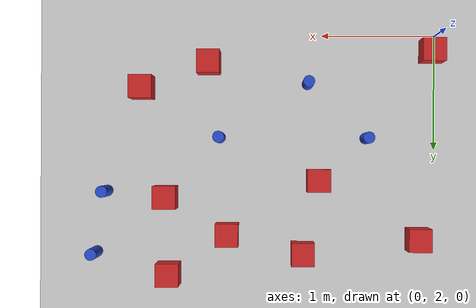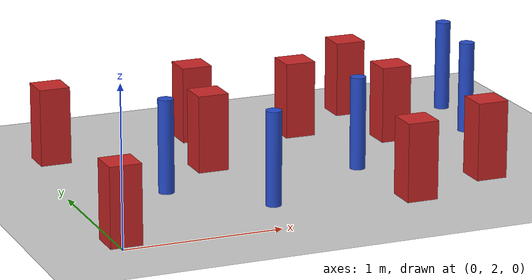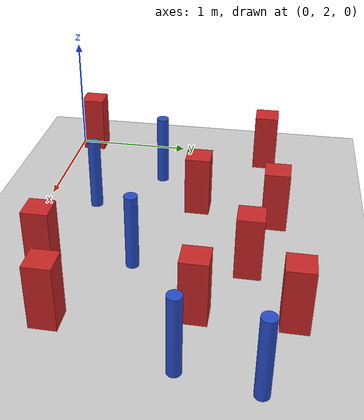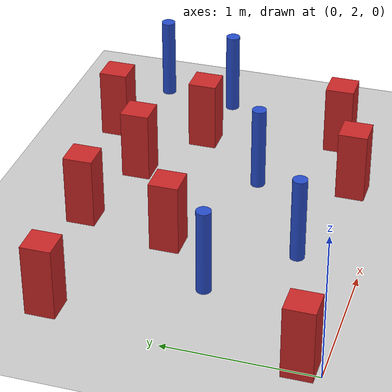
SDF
<sdf version="1.6">
 <world name="default">
  <model name="ground_plane">
   <static>1</static>
   <link name="link">
    <collision name="collision">
     <geometry><plane><normal>0 0 1</normal><size>100 100</size></plane></geometry>
     <surface><friction><ode><mu>100</mu><mu2>50</mu2></ode></friction></surface>
    </collision>
    <visual name="visual">
     <cast_shadows>0</cast_shadows>
     <geometry><plane><normal>0 0 1</normal><size>100 100</size></plane></geometry>
     <material>
      <ambient>1.0 1.0 1.0 1.0</ambient>
      <diffuse>0.8 0.8 0.8 1.0</diffuse>
      <specular>0.01 0.01 0.01 1.000000</specular>
     </material>
    </visual>
   </link>
  </model>
  <model name="pole_obstacle3">
   <static>true</static>
   <pose>1.12006407967 2.42599292531 2.88873142074e-08 -9.90536689791e-09 4.6021994899e-07 -1.20965994959e-07</pose>
   <link name="link">
    <pose>0 0 0.3 0 -0 0</pose>
    <inertial>
     <mass>1</mass>
     <inertia><ixx>0.145833</ixx><ixy>0</ixy><ixz>0</ixz><iyy>0.145833</iyy><iyz>0</iyz><izz>0.125</izz></inertia>
    </inertial>
    <collision name="collision">
     <geometry><cylinder><radius>0.05</radius><length>.6</length></cylinder></geometry>
    </collision>
    <visual name="visual">
     <geometry><cylinder><radius>0.05</radius><length>.6</length></cylinder></geometry>
     <material>
      <script><name>Gazebo/Blue</name><uri>file://media/materials/scripts/gazebo.material</uri></script>
     </material>
    </visual>
   </link>
  </model>
  <model name="square_post_obstacle60">
   <static>true</static>
   <pose>1.82237085994 3.7509318334 8.22691968438e-08 7.2212513382e-06 -7.54495500217e-07 2.29674213826e-05</pose>
   <link name="link">
    <pose>0 0 0.25 0 -0 0</pose>
    <inertial>
     <mass>100</mass>
     <inertia>
      <ixx>0.166667</ixx>
      <ixy>0</ixy>
      <ixz>0</ixz>
      <iyy>0.166667</iyy>
      <iyz>0</iyz>
      <izz>0.166667</izz>
     </inertia>
    </inertial>
    <collision name="collision"><geometry><box><size>.2 .2 .5</size></box></geometry></collision>
    <visual name="visual">
     <geometry><box><size>.2 .2 .5</size></box></geometry>
     <material>
      <script><name>Gazebo/Red</name><uri>file://media/materials/scripts/gazebo.material</uri></script>
     </material>
    </visual>
   </link>
  </model>
  <model name="pole_obstacle63">
   <static>true</static>
   <pose>1.89204631772 2.90207354669 2.88873142074e-08 -9.90536689791e-09 4.6021994899e-07 -1.20965994959e-07</pose>
   <link name="link">
    <pose>0 0 0.3 0 -0 0</pose>
    <inertial>
     <mass>1</mass>
     <inertia><ixx>0.145833</ixx><ixy>0</ixy><ixz>0</ixz><iyy>0.145833</iyy><iyz>0</iyz><izz>0.125</izz></inertia>
    </inertial>
    <collision name="collision">
     <geometry><cylinder><radius>0.05</radius><length>.6</length></cylinder></geometry>
    </collision>
    <visual name="visual">
     <geometry><cylinder><radius>0.05</radius><length>.6</length></cylinder></geometry>
     <material>
      <script><name>Gazebo/Blue</name><uri>file://media/materials/scripts/gazebo.material</uri></script>
     </material>
    </visual>
   </link>
  </model>
  <model name="square_post_obstacle66">
   <static>true</static>
   <pose>1.16284551338 3.91418669821 8.22691968438e-08 7.2212513382e-06 -7.54495500217e-07 2.29674213826e-05</pose>
   <link name="link">
    <pose>0 0 0.25 0 -0 0</pose>
    <inertial>
     <mass>100</mass>
     <inertia>
      <ixx>0.166667</ixx>
      <ixy>0</ixy>
      <ixz>0</ixz>
      <iyy>0.166667</iyy>
      <iyz>0</iyz>
      <izz>0.166667</izz>
     </inertia>
    </inertial>
    <collision name="collision"><geometry><box><size>.2 .2 .5</size></box></geometry></collision>
    <visual name="visual">
     <geometry><box><size>.2 .2 .5</size></box></geometry>
     <material>
      <script><name>Gazebo/Red</name><uri>file://media/materials/scripts/gazebo.material</uri></script>
     </material>
    </visual>
   </link>
  </model>
  <model name="square_post_obstacle74">
   <static>true</static>
   <pose>2.57115059037 2.46789326973 8.22691968438e-08 7.2212513382e-06 -7.54495500217e-07 2.29674213826e-05</pose>
   <link name="link">
    <pose>0 0 0.25 0 -0 0</pose>
    <inertial>
     <mass>100</mass>
     <inertia>
      <ixx>0.166667</ixx>
      <ixy>0</ixy>
      <ixz>0</ixz>
      <iyy>0.166667</iyy>
      <iyz>0</iyz>
      <izz>0.166667</izz>
     </inertia>
    </inertial>
    <collision name="collision"><geometry><box><size>.2 .2 .5</size></box></geometry></collision>
    <visual name="visual">
     <geometry><box><size>.2 .2 .5</size></box></geometry>
     <material>
      <script><name>Gazebo/Red</name><uri>file://media/materials/scripts/gazebo.material</uri></script>
     </material>
    </visual>
   </link>
  </model>
  <model name="pole_obstacle106">
   <static>true</static>
   <pose>2.97546142834 3.91210693573 2.88873142074e-08 -9.90536690232e-09 4.6021994898e-07 -1.20965994968e-07</pose>
   <link name="link">
    <pose>0 0 0.3 0 -0 0</pose>
    <inertial>
     <mass>1</mass>
     <inertia><ixx>0.145833</ixx><ixy>0</ixy><ixz>0</ixz><iyy>0.145833</iyy><iyz>0</iyz><izz>0.125</izz></inertia>
    </inertial>
    <collision name="collision">
     <geometry><cylinder><radius>0.05</radius><length>.6</length></cylinder></geometry>
    </collision>
    <visual name="visual">
     <geometry><cylinder><radius>0.05</radius><length>.6</length></cylinder></geometry>
     <material>
      <script><name>Gazebo/Blue</name><uri>file://media/materials/scripts/gazebo.material</uri></script>
     </material>
    </visual>
   </link>
  </model>
  <model name="pole_obstacle110">
   <static>true</static>
   <pose>2.88596875471 3.37521365826 2.88873142074e-08 -9.90536690232e-09 4.6021994898e-07 -1.20965994968e-07</pose>
   <link name="link">
    <pose>0 0 0.3 0 -0 0</pose>
    <inertial>
     <mass>1</mass>
     <inertia><ixx>0.145833</ixx><ixy>0</ixy><ixz>0</ixz><iyy>0.145833</iyy><iyz>0</iyz><izz>0.125</izz></inertia>
    </inertial>
    <collision name="collision">
     <geometry><cylinder><radius>0.05</radius><length>.6</length></cylinder></geometry>
    </collision>
    <visual name="visual">
     <geometry><cylinder><radius>0.05</radius><length>.6</length></cylinder></geometry>
     <material>
      <script><name>Gazebo/Blue</name><uri>file://media/materials/scripts/gazebo.material</uri></script>
     </material>
    </visual>
   </link>
  </model>
  <model name="square_post_obstacle116">
   <static>true</static>
   <pose>1.02640708633 3.27632808334 8.22691968438e-08 7.2212513382e-06 -7.54495500217e-07 2.29674213826e-05</pose>
   <link name="link">
    <pose>0 0 0.25 0 -0 0</pose>
    <inertial>
     <mass>100</mass>
     <inertia>
      <ixx>0.166667</ixx>
      <ixy>0</ixy>
      <ixz>0</ixz>
      <iyy>0.166667</iyy>
      <iyz>0</iyz>
      <izz>0.166667</izz>
     </inertia>
    </inertial>
    <collision name="collision"><geometry><box><size>.2 .2 .5</size></box></geometry></collision>
    <visual name="visual">
     <geometry><box><size>.2 .2 .5</size></box></geometry>
     <material>
      <script><name>Gazebo/Red</name><uri>file://media/materials/scripts/gazebo.material</uri></script>
     </material>
    </visual>
   </link>
  </model>
  <model name="square_post_obstacle131">
   <static>true</static>
   <pose>1.9884855205 2.24777952639 8.22691968438e-08 7.2212513382e-06 -7.54495500217e-07 2.29674213826e-05</pose>
   <link name="link">
    <pose>0 0 0.25 0 -0 0</pose>
    <inertial>
     <mass>100</mass>
     <inertia>
      <ixx>0.166667</ixx>
      <ixy>0</ixy>
      <ixz>0</ixz>
      <iyy>0.166667</iyy>
      <iyz>0</iyz>
      <izz>0.166667</izz>
     </inertia>
    </inertial>
    <collision name="collision"><geometry><box><size>.2 .2 .5</size></box></geometry></collision>
    <visual name="visual">
     <geometry><box><size>.2 .2 .5</size></box></geometry>
     <material>
      <script><name>Gazebo/Red</name><uri>file://media/materials/scripts/gazebo.material</uri></script>
     </material>
    </visual>
   </link>
  </model>
  <model name="square_post_obstacle155">
   <static>true</static>
   <pose>2.33254482875 4.09415571903 8.22691968438e-08 7.22125133819e-06 -7.54495500217e-07 2.29674213826e-05</pose>
   <link name="link">
    <pose>0 0 0.25 0 -0 0</pose>
    <inertial>
     <mass>100</mass>
     <inertia>
      <ixx>0.166667</ixx>
      <ixy>0</ixy>
      <ixz>0</ixz>
      <iyy>0.166667</iyy>
      <iyz>0</iyz>
      <izz>0.166667</izz>
     </inertia>
    </inertial>
    <collision name="collision"><geometry><box><size>.2 .2 .5</size></box></geometry></collision>
    <visual name="visual">
     <geometry><box><size>.2 .2 .5</size></box></geometry>
     <material>
      <script><name>Gazebo/Red</name><uri>file://media/materials/scripts/gazebo.material</uri></script>
     </material>
    </visual>
   </link>
  </model>
  <model name="square_post_obstacle161">
   <static>true</static>
   <pose>0.0383099126469 2.1383156638 8.22691968438e-08 7.2212513382e-06 -7.54495500217e-07 2.29674213826e-05</pose>
   <link name="link">
    <pose>0 0 0.25 0 -0 0</pose>
    <inertial>
     <mass>100</mass>
     <inertia>
      <ixx>0.166667</ixx>
      <ixy>0</ixy>
      <ixz>0</ixz>
      <iyy>0.166667</iyy>
      <iyz>0</iyz>
      <izz>0.166667</izz>
     </inertia>
    </inertial>
    <collision name="collision"><geometry><box><size>.2 .2 .5</size></box></geometry></collision>
    <visual name="visual">
     <geometry><box><size>.2 .2 .5</size></box></geometry>
     <material>
      <script><name>Gazebo/Red</name><uri>file://media/materials/scripts/gazebo.material</uri></script>
     </material>
    </visual>
   </link>
  </model>
  <model name="pole_obstacle185">
   <static>true</static>
   <pose>0.6059174356 2.90358751027 2.88873142074e-08 -9.90536689636e-09 4.60219948994e-07 -1.20965994958e-07</pose>
   <link name="link">
    <pose>0 0 0.3 0 -0 0</pose>
    <inertial>
     <mass>1</mass>
     <inertia><ixx>0.145833</ixx><ixy>0</ixy><ixz>0</ixz><iyy>0.145833</iyy><iyz>0</iyz><izz>0.125</izz></inertia>
    </inertial>
    <collision name="collision">
     <geometry><cylinder><radius>0.05</radius><length>.6</length></cylinder></geometry>
    </collision>
    <visual name="visual">
     <geometry><cylinder><radius>0.05</radius><length>.6</length></cylinder></geometry>
     <material>
      <script><name>Gazebo/Blue</name><uri>file://media/materials/scripts/gazebo.material</uri></script>
     </material>
    </visual>
   </link>
  </model>
  <model name="square_post_obstacle184">
   <static>true</static>
   <pose>0.153629990844 3.78752730661 8.22691968438e-08 7.2212513382e-06 -7.54495500217e-07 2.29674213826e-05</pose>
   <link name="link">
    <pose>0 0 0.25 0 -0 0</pose>
    <inertial>
     <mass>100</mass>
     <inertia>
      <ixx>0.166667</ixx>
      <ixy>0</ixy>
      <ixz>0</ixz>
      <iyy>0.166667</iyy>
      <iyz>0</iyz>
      <izz>0.166667</izz>
     </inertia>
    </inertial>
    <collision name="collision"><geometry><box><size>.2 .2 .5</size></box></geometry></collision>
    <visual name="visual">
     <geometry><box><size>.2 .2 .5</size></box></geometry>
     <material>
      <script><name>Gazebo/Red</name><uri>file://media/materials/scripts/gazebo.material</uri></script>
     </material>
    </visual>
   </link>
  </model>
  <model name="square_post_obstacle219">
   <static>true</static>
   <pose>2.36162003262 3.42722996466 8.22691968438e-08 7.2212513382e-06 -7.54495500217e-07 2.29674213826e-05</pose>
   <link name="link">
    <pose>0 0 0.25 0 -0 0</pose>
    <inertial>
     <mass>100</mass>
     <inertia>
      <ixx>0.166667</ixx>
      <ixy>0</ixy>
      <ixz>0</ixz>
      <iyy>0.166667</iyy>
      <iyz>0</iyz>
      <izz>0.166667</izz>
     </inertia>
    </inertial>
    <collision name="collision"><geometry><box><size>.2 .2 .5</size></box></geometry></collision>
    <visual name="visual">
     <geometry><box><size>.2 .2 .5</size></box></geometry>
     <material>
      <script><name>Gazebo/Red</name><uri>file://media/materials/scripts/gazebo.material</uri></script>
     </material>
    </visual>
   </link>
  </model>
 </world>
</sdf>
